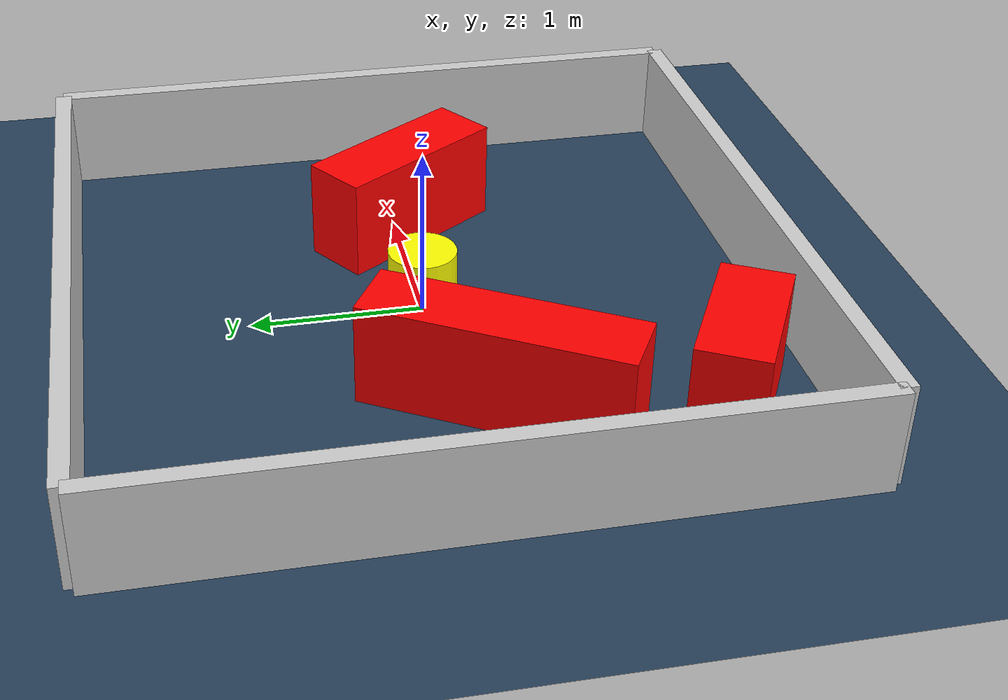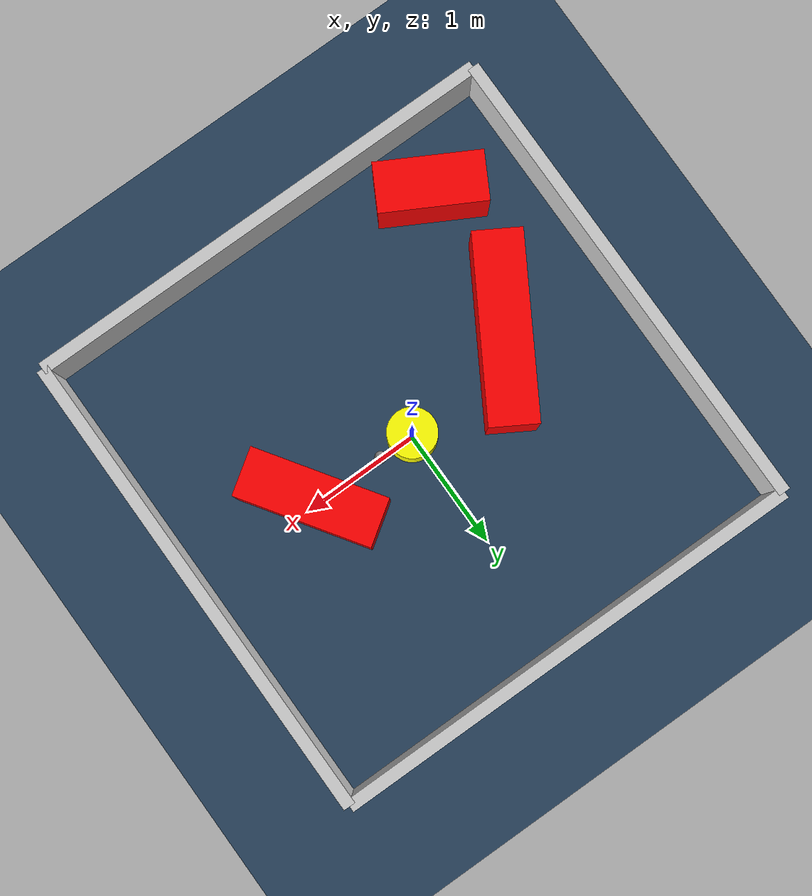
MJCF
<?xml version="1.0" ?>
<mujoco model="generated_environment">
  <option timestep="0.01" integrator="RK4" cone="elliptic"/>
  <default>
    <geom density="1"/>
  </default>
  <asset>
    <texture builtin="gradient" height="3072" rgb1="0.3 0.5 0.7" rgb2="0 0 0" type="skybox" width="512"/>
    <texture builtin="checker" height="300" mark="edge" markrgb="0.8 0.8 0.8" name="groundplane" rgb1="0.2 0.3 0.4" rgb2="0.1 0.2 0.3" type="2d" width="300"/>
    <material name="groundplane" reflectance="0.2" texrepeat="5 5" texture="groundplane" texuniform="true"/>
    <material name="robot" rgba="0.0 1.0 0.0 1"/>
  </asset>
  <worldbody>
    <light dir="0 0 -1" directional="true" pos="0 0 1.5"/>
    <geom condim="4" friction="1.0 0.005 0.001" material="groundplane" name="floor" size="0 0 0.05" type="plane"/>
    <body name="walls">
      <geom name="wall_1" condim="4" pos="-2.0 0.0 0.3" rgba="0.800000011920929 0.800000011920929 0.800000011920929 1.0" size="0.05 2.0 0.3" type="box"/>
      <geom name="wall_2" condim="4" pos="2.0 0.0 0.3" rgba="0.800000011920929 0.800000011920929 0.800000011920929 1.0" size="0.05 2.0 0.3" type="box"/>
      <geom name="wall_3" condim="4" pos="0.0 -2.0 0.3" rgba="0.800000011920929 0.800000011920929 0.800000011920929 1.0" size="2.0 0.05 0.3" type="box"/>
      <geom name="wall_4" condim="4" pos="0.0 2.0 0.3" rgba="0.800000011920929 0.800000011920929 0.800000011920929 1.0" size="2.0 0.05 0.3" type="box"/>
    </body>
    <body name="robot">
      <joint name="joint_x" type="slide" pos="0 0 0" axis="1 0 0"/>
      <joint name="joint_y" type="slide" pos="0 0 0" axis="0 1 0"/>
      <geom name="robot" type="sphere" pos="0.3 0.0 0.2" size="0.05" mass="5." friction="1.0 0.005 0.0001" condim="4" rgba="0.5 0.5 0.5 1.0"/>
      <site name="sensor_ball"/>
    </body>
    <body name="obstacle_movable_1">
      <geom name="obstacle_movable_1" condim="4" pos="0.0 0.0 0.2" euler="0 0 0.0" friction="1.0 0.005 0.001" rgba="1.0 1.0 0.0 1.0" size="0.2 0.2 0.0" type="cylinder" mass="0.1"/>
      <joint type="free"/>
    </body>
    <body name="obstacle_2_static">
      <geom name="obstacle_2_static" condim="4" pos="0.9106926435381941 -0.036273666286747774 0.3" euler="0 0 304.0286391952886" friction="1.0 0.005 0.001" rgba="1 0 0 1" size="0.558106945442711 0.2 0.3" type="box"/>
    </body>
    <body name="obstacle_3_static">
      <geom name="obstacle_3_static" condim="4" pos="-1.0313567401495598 -0.22902224825427608 0.3" euler="0 0 239.20843338090256" friction="1.0 0.005 0.001" rgba="1 0 0 1" size="0.7527278226007406 0.2 0.3" type="box"/>
    </body>
    <body name="obstacle_4_static">
      <geom name="obstacle_4_static" condim="4" pos="-1.2205032374750386 -1.465420763103995 0.3" euler="0 0 331.21268403648355" friction="1.0 0.005 0.001" rgba="1 0 0 1" size="0.4321326837889851 0.2 0.3" type="box"/>
    </body>
  </worldbody>
  <actuator>
    <motor name="actuator_x" joint="joint_x" gear="1" ctrlrange="-1 1"/>
    <motor name="actuator_y" joint="joint_y" gear="1" ctrlrange="-1 1"/>
  </actuator>
</mujoco>
